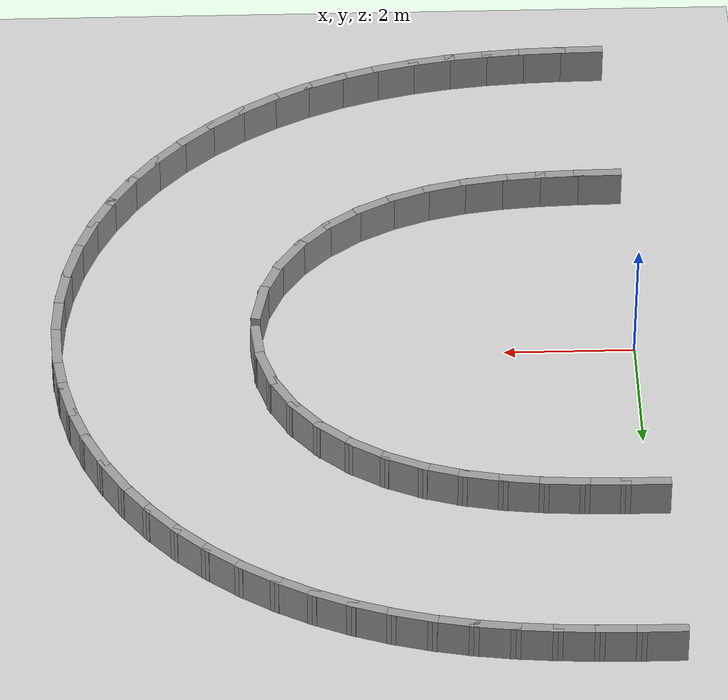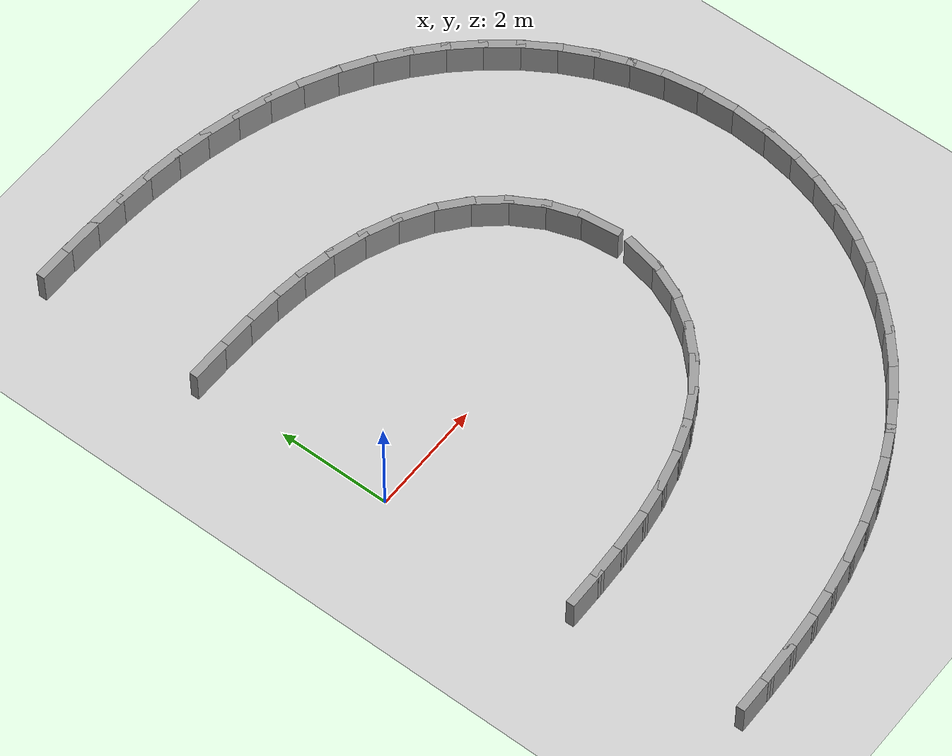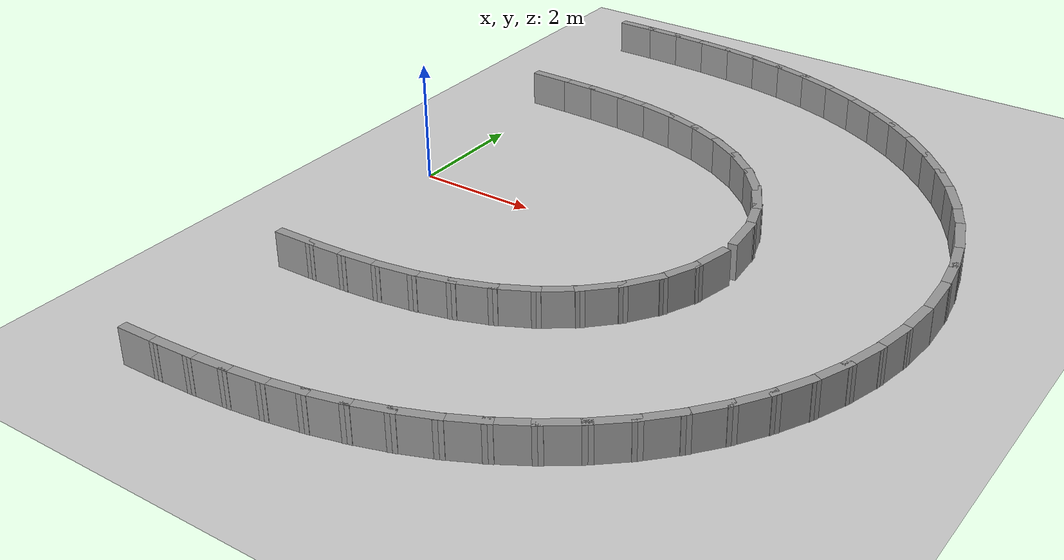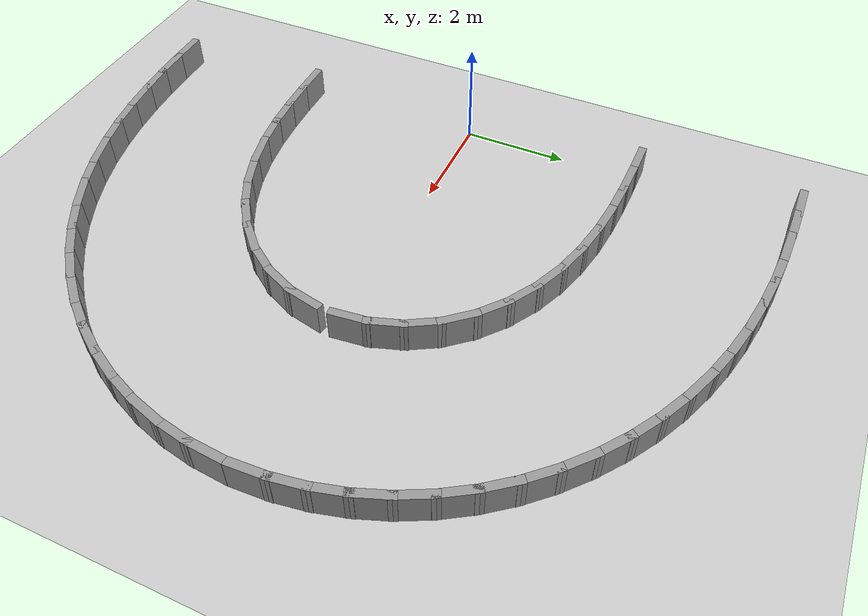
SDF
<sdf version="1.7">
 <world name="default">
  <model name="ground_plane">
   <static>1</static>
   <link name="link">
    <collision name="collision">
     <geometry><plane><normal>0 0 1</normal><size>100 100</size></plane></geometry>
     <surface><friction><ode><mu>100</mu><mu2>50</mu2></ode></friction></surface>
    </collision>
    <visual name="visual">
     <cast_shadows>0</cast_shadows>
     <geometry><plane><normal>0 0 1</normal><size>100 100</size></plane></geometry>
     <material>
      <script><uri>file://media/materials/scripts/gazebo.material</uri><name>Gazebo/Grey</name></script>
     </material>
    </visual>
   </link>
  </model>
  <model name="rand_lobed_07">
   <link name="Wall_0">
    <collision name="Wall_0_Collision">
     <geometry><box><size>0.7489 0.1500 0.6000</size></box></geometry>
     <pose>0 0 0.3000 0 -0 0</pose>
    </collision>
    <visual name="Wall_0_Visual">
     <pose>0 0 0.3000 0 -0 0</pose>
     <geometry><box><size>0.7489 0.1500 0.6000</size></box></geometry>
     <material>
      <script><uri>file://media/materials/scripts/gazebo.material</uri><name>Gazebo/Grey</name></script>
      <ambient>1 1 1 1</ambient>
     </material>
    </visual>
    <pose>5.7555 0.2977 0 0 -0 1.67740</pose>
   </link>
   <link name="Wall_1">
    <collision name="Wall_1_Collision">
     <geometry><box><size>0.7489 0.1500 0.6000</size></box></geometry>
     <pose>0 0 0.3000 0 -0 0</pose>
    </collision>
    <visual name="Wall_1_Visual">
     <pose>0 0 0.3000 0 -0 0</pose>
     <geometry><box><size>0.7489 0.1500 0.6000</size></box></geometry>
     <material>
      <script><uri>file://media/materials/scripts/gazebo.material</uri><name>Gazebo/Grey</name></script>
      <ambient>1 1 1 1</ambient>
     </material>
    </visual>
    <pose>5.6305 0.8801 0 0 -0 1.88706</pose>
   </link>
   <link name="Wall_2">
    <collision name="Wall_2_Collision">
     <geometry><box><size>0.7491 0.1500 0.6000</size></box></geometry>
     <pose>0 0 0.3000 0 -0 0</pose>
    </collision>
    <visual name="Wall_2_Visual">
     <pose>0 0 0.3000 0 -0 0</pose>
     <geometry><box><size>0.7491 0.1500 0.6000</size></box></geometry>
     <material>
      <script><uri>file://media/materials/scripts/gazebo.material</uri><name>Gazebo/Grey</name></script>
      <ambient>1 1 1 1</ambient>
     </material>
    </visual>
    <pose>5.3895 1.4252 0 0 -0 2.08697</pose>
   </link>
   <link name="Wall_3">
    <collision name="Wall_3_Collision">
     <geometry><box><size>0.7492 0.1500 0.6000</size></box></geometry>
     <pose>0 0 0.3000 0 -0 0</pose>
    </collision>
    <visual name="Wall_3_Visual">
     <pose>0 0 0.3000 0 -0 0</pose>
     <geometry><box><size>0.7492 0.1500 0.6000</size></box></geometry>
     <material>
      <script><uri>file://media/materials/scripts/gazebo.material</uri><name>Gazebo/Grey</name></script>
      <ambient>1 1 1 1</ambient>
     </material>
    </visual>
    <pose>5.0481 1.9144 0 0 -0 2.27315</pose>
   </link>
   <link name="Wall_4">
    <collision name="Wall_4_Collision">
     <geometry><box><size>0.7493 0.1500 0.6000</size></box></geometry>
     <pose>0 0 0.3000 0 -0 0</pose>
    </collision>
    <visual name="Wall_4_Visual">
     <pose>0 0 0.3000 0 -0 0</pose>
     <geometry><box><size>0.7493 0.1500 0.6000</size></box></geometry>
     <material>
      <script><uri>file://media/materials/scripts/gazebo.material</uri><name>Gazebo/Grey</name></script>
      <ambient>1 1 1 1</ambient>
     </material>
    </visual>
    <pose>4.6250 2.3357 0 0 -0 2.44361</pose>
   </link>
   <link name="Wall_5">
    <collision name="Wall_5_Collision">
     <geometry><box><size>0.7495 0.1500 0.6000</size></box></geometry>
     <pose>0 0 0.3000 0 -0 0</pose>
    </collision>
    <visual name="Wall_5_Visual">
     <pose>0 0 0.3000 0 -0 0</pose>
     <geometry><box><size>0.7495 0.1500 0.6000</size></box></geometry>
     <material>
      <script><uri>file://media/materials/scripts/gazebo.material</uri><name>Gazebo/Grey</name></script>
      <ambient>1 1 1 1</ambient>
     </material>
    </visual>
    <pose>4.1389 2.6835 0 0 -0 2.59742</pose>
   </link>
   <link name="Wall_6">
    <collision name="Wall_6_Collision">
     <geometry><box><size>0.7496 0.1500 0.6000</size></box></geometry>
     <pose>0 0 0.3000 0 -0 0</pose>
    </collision>
    <visual name="Wall_6_Visual">
     <pose>0 0 0.3000 0 -0 0</pose>
     <geometry><box><size>0.7496 0.1500 0.6000</size></box></geometry>
     <material>
      <script><uri>file://media/materials/scripts/gazebo.material</uri><name>Gazebo/Grey</name></script>
      <ambient>1 1 1 1</ambient>
     </material>
    </visual>
    <pose>3.6073 2.9575 0 0 -0 2.73401</pose>
   </link>
   <link name="Wall_7">
    <collision name="Wall_7_Collision">
     <geometry><box><size>0.7497 0.1500 0.6000</size></box></geometry>
     <pose>0 0 0.3000 0 -0 0</pose>
    </collision>
    <visual name="Wall_7_Visual">
     <pose>0 0 0.3000 0 -0 0</pose>
     <geometry><box><size>0.7497 0.1500 0.6000</size></box></geometry>
     <material>
      <script><uri>file://media/materials/scripts/gazebo.material</uri><name>Gazebo/Grey</name></script>
      <ambient>1 1 1 1</ambient>
     </material>
    </visual>
    <pose>3.0446 3.1619 0 0 -0 2.85229</pose>
   </link>
   <link name="Wall_8">
    <collision name="Wall_8_Collision">
     <geometry><box><size>0.7498 0.1500 0.6000</size></box></geometry>
     <pose>0 0 0.3000 0 -0 0</pose>
    </collision>
    <visual name="Wall_8_Visual">
     <pose>0 0 0.3000 0 -0 0</pose>
     <geometry><box><size>0.7498 0.1500 0.6000</size></box></geometry>
     <material>
      <script><uri>file://media/materials/scripts/gazebo.material</uri><name>Gazebo/Grey</name></script>
      <ambient>1 1 1 1</ambient>
     </material>
    </visual>
    <pose>2.4628 3.3044 0 0 -0 2.95045</pose>
   </link>
   <link name="Wall_9">
    <collision name="Wall_9_Collision">
     <geometry><box><size>0.7499 0.1500 0.6000</size></box></geometry>
     <pose>0 0 0.3000 0 -0 0</pose>
    </collision>
    <visual name="Wall_9_Visual">
     <pose>0 0 0.3000 0 -0 0</pose>
     <geometry><box><size>0.7499 0.1500 0.6000</size></box></geometry>
     <material>
      <script><uri>file://media/materials/scripts/gazebo.material</uri><name>Gazebo/Grey</name></script>
      <ambient>1 1 1 1</ambient>
     </material>
    </visual>
    <pose>1.8704 3.3957 0 0 -0 3.02677</pose>
   </link>
   <link name="Wall_10">
    <collision name="Wall_10_Collision">
     <geometry><box><size>0.7500 0.1500 0.6000</size></box></geometry>
     <pose>0 0 0.3000 0 -0 0</pose>
    </collision>
    <visual name="Wall_10_Visual">
     <pose>0 0 0.3000 0 -0 0</pose>
     <geometry><box><size>0.7500 0.1500 0.6000</size></box></geometry>
     <material>
      <script><uri>file://media/materials/scripts/gazebo.material</uri><name>Gazebo/Grey</name></script>
      <ambient>1 1 1 1</ambient>
     </material>
    </visual>
    <pose>1.2730 3.4483 0 0 -0 3.08092</pose>
   </link>
   <link name="Wall_11">
    <collision name="Wall_11_Collision">
     <geometry><box><size>0.7500 0.1500 0.6000</size></box></geometry>
     <pose>0 0 0.3000 0 -0 0</pose>
    </collision>
    <visual name="Wall_11_Visual">
     <pose>0 0 0.3000 0 -0 0</pose>
     <geometry><box><size>0.7500 0.1500 0.6000</size></box></geometry>
     <material>
      <script><uri>file://media/materials/scripts/gazebo.material</uri><name>Gazebo/Grey</name></script>
      <ambient>1 1 1 1</ambient>
     </material>
    </visual>
    <pose>0.6737 3.4742 0 0 -0 3.11592</pose>
   </link>
   <link name="Wall_12">
    <collision name="Wall_12_Collision">
     <geometry><box><size>0.7500 0.1500 0.6000</size></box></geometry>
     <pose>0 0 0.3000 0 -0 0</pose>
    </collision>
    <visual name="Wall_12_Visual">
     <pose>0 0 0.3000 0 -0 0</pose>
     <geometry><box><size>0.7500 0.1500 0.6000</size></box></geometry>
     <material>
      <script><uri>file://media/materials/scripts/gazebo.material</uri><name>Gazebo/Grey</name></script>
      <ambient>1 1 1 1</ambient>
     </material>
    </visual>
    <pose>0.0738 3.4826 0 0 -0 3.13907</pose>
   </link>
   <link name="Wall_38">
    <collision name="Wall_38_Collision">
     <geometry><box><size>0.7500 0.1500 0.6000</size></box></geometry>
     <pose>0 0 0.3000 0 -0 0</pose>
    </collision>
    <visual name="Wall_38_Visual">
     <pose>0 0 0.3000 0 -0 0</pose>
     <geometry><box><size>0.7500 0.1500 0.6000</size></box></geometry>
     <material>
      <script><uri>file://media/materials/scripts/gazebo.material</uri><name>Gazebo/Grey</name></script>
      <ambient>1 1 1 1</ambient>
     </material>
    </visual>
    <pose>0.3786 -3.4801 0 0 -0 0.01340</pose>
   </link>
   <link name="Wall_39">
    <collision name="Wall_39_Collision">
     <geometry><box><size>0.7500 0.1500 0.6000</size></box></geometry>
     <pose>0 0 0.3000 0 -0 0</pose>
    </collision>
    <visual name="Wall_39_Visual">
     <pose>0 0 0.3000 0 -0 0</pose>
     <geometry><box><size>0.7500 0.1500 0.6000</size></box></geometry>
     <material>
      <script><uri>file://media/materials/scripts/gazebo.material</uri><name>Gazebo/Grey</name></script>
      <ambient>1 1 1 1</ambient>
     </material>
    </visual>
    <pose>0.9783 -3.4637 0 0 -0 0.04142</pose>
   </link>
   <link name="Wall_40">
    <collision name="Wall_40_Collision">
     <geometry><box><size>0.7499 0.1500 0.6000</size></box></geometry>
     <pose>0 0 0.3000 0 -0 0</pose>
    </collision>
    <visual name="Wall_40_Visual">
     <pose>0 0 0.3000 0 -0 0</pose>
     <geometry><box><size>0.7499 0.1500 0.6000</size></box></geometry>
     <material>
      <script><uri>file://media/materials/scripts/gazebo.material</uri><name>Gazebo/Grey</name></script>
      <ambient>1 1 1 1</ambient>
     </material>
    </visual>
    <pose>1.5769 -3.4256 0 0 -0 0.08551</pose>
   </link>
   <link name="Wall_41">
    <collision name="Wall_41_Collision">
     <geometry><box><size>0.7499 0.1500 0.6000</size></box></geometry>
     <pose>0 0 0.3000 0 -0 0</pose>
    </collision>
    <visual name="Wall_41_Visual">
     <pose>0 0 0.3000 0 -0 0</pose>
     <geometry><box><size>0.7499 0.1500 0.6000</size></box></geometry>
     <material>
      <script><uri>file://media/materials/scripts/gazebo.material</uri><name>Gazebo/Grey</name></script>
      <ambient>1 1 1 1</ambient>
     </material>
    </visual>
    <pose>2.1723 -3.3549 0 0 -0 0.15079</pose>
   </link>
   <link name="Wall_42">
    <collision name="Wall_42_Collision">
     <geometry><box><size>0.7498 0.1500 0.6000</size></box></geometry>
     <pose>0 0 0.3000 0 -0 0</pose>
    </collision>
    <visual name="Wall_42_Visual">
     <pose>0 0 0.3000 0 -0 0</pose>
     <geometry><box><size>0.7498 0.1500 0.6000</size></box></geometry>
     <material>
      <script><uri>file://media/materials/scripts/gazebo.material</uri><name>Gazebo/Grey</name></script>
      <ambient>1 1 1 1</ambient>
     </material>
    </visual>
    <pose>2.7602 -3.2391 0 0 -0 0.23840</pose>
   </link>
   <link name="Wall_43">
    <collision name="Wall_43_Collision">
     <geometry><box><size>0.7496 0.1500 0.6000</size></box></geometry>
     <pose>0 0 0.3000 0 -0 0</pose>
    </collision>
    <visual name="Wall_43_Visual">
     <pose>0 0 0.3000 0 -0 0</pose>
     <geometry><box><size>0.7496 0.1500 0.6000</size></box></geometry>
     <material>
      <script><uri>file://media/materials/scripts/gazebo.material</uri><name>Gazebo/Grey</name></script>
      <ambient>1 1 1 1</ambient>
     </material>
    </visual>
    <pose>3.3336 -3.0663 0 0 -0 0.34700</pose>
   </link>
   <link name="Wall_44">
    <collision name="Wall_44_Collision">
     <geometry><box><size>0.7495 0.1500 0.6000</size></box></geometry>
     <pose>0 0 0.3000 0 -0 0</pose>
    </collision>
    <visual name="Wall_44_Visual">
     <pose>0 0 0.3000 0 -0 0</pose>
     <geometry><box><size>0.7495 0.1500 0.6000</size></box></geometry>
     <material>
      <script><uri>file://media/materials/scripts/gazebo.material</uri><name>Gazebo/Grey</name></script>
      <ambient>1 1 1 1</ambient>
     </material>
    </visual>
    <pose>3.8821 -2.8273 0 0 -0 0.47477</pose>
   </link>
   <link name="Wall_45">
    <collision name="Wall_45_Collision">
     <geometry><box><size>0.7494 0.1500 0.6000</size></box></geometry>
     <pose>0 0 0.3000 0 -0 0</pose>
    </collision>
    <visual name="Wall_45_Visual">
     <pose>0 0 0.3000 0 -0 0</pose>
     <geometry><box><size>0.7494 0.1500 0.6000</size></box></geometry>
     <material>
      <script><uri>file://media/materials/scripts/gazebo.material</uri><name>Gazebo/Grey</name></script>
      <ambient>1 1 1 1</ambient>
     </material>
    </visual>
    <pose>4.3926 -2.5161 0 0 -0 0.62024</pose>
   </link>
   <link name="Wall_46">
    <collision name="Wall_46_Collision">
     <geometry><box><size>0.7493 0.1500 0.6000</size></box></geometry>
     <pose>0 0 0.3000 0 -0 0</pose>
    </collision>
    <visual name="Wall_46_Visual">
     <pose>0 0 0.3000 0 -0 0</pose>
     <geometry><box><size>0.7493 0.1500 0.6000</size></box></geometry>
     <material>
      <script><uri>file://media/materials/scripts/gazebo.material</uri><name>Gazebo/Grey</name></script>
      <ambient>1 1 1 1</ambient>
     </material>
    </visual>
    <pose>4.8490 -2.1306 0 0 -0 0.78256</pose>
   </link>
   <link name="Wall_47">
    <collision name="Wall_47_Collision">
     <geometry><box><size>0.7491 0.1500 0.6000</size></box></geometry>
     <pose>0 0 0.3000 0 -0 0</pose>
    </collision>
    <visual name="Wall_47_Visual">
     <pose>0 0 0.3000 0 -0 0</pose>
     <geometry><box><size>0.7491 0.1500 0.6000</size></box></geometry>
     <material>
      <script><uri>file://media/materials/scripts/gazebo.material</uri><name>Gazebo/Grey</name></script>
      <ambient>1 1 1 1</ambient>
     </material>
    </visual>
    <pose>5.2330 -1.6737 0 0 -0 0.96116</pose>
   </link>
   <link name="Wall_48">
    <collision name="Wall_48_Collision">
     <geometry><box><size>0.7490 0.1500 0.6000</size></box></geometry>
     <pose>0 0 0.3000 0 -0 0</pose>
    </collision>
    <visual name="Wall_48_Visual">
     <pose>0 0 0.3000 0 -0 0</pose>
     <geometry><box><size>0.7490 0.1500 0.6000</size></box></geometry>
     <material>
      <script><uri>file://media/materials/scripts/gazebo.material</uri><name>Gazebo/Grey</name></script>
      <ambient>1 1 1 1</ambient>
     </material>
    </visual>
    <pose>5.5256 -1.1542 0 0 -0 1.15469</pose>
   </link>
   <link name="Wall_49">
    <collision name="Wall_49_Collision">
     <geometry><box><size>0.7489 0.1500 0.6000</size></box></geometry>
     <pose>0 0 0.3000 0 -0 0</pose>
    </collision>
    <visual name="Wall_49_Visual">
     <pose>0 0 0.3000 0 -0 0</pose>
     <geometry><box><size>0.7489 0.1500 0.6000</size></box></geometry>
     <material>
      <script><uri>file://media/materials/scripts/gazebo.material</uri><name>Gazebo/Grey</name></script>
      <ambient>1 1 1 1</ambient>
     </material>
    </visual>
    <pose>5.7092 -0.5874 0 0 -0 1.36021</pose>
   </link>
   <link name="Wall_50">
    <collision name="Wall_50_Collision">
     <geometry><box><size>0.7497 0.1500 0.6000</size></box></geometry>
     <pose>0 0 0.3000 0 -0 0</pose>
    </collision>
    <visual name="Wall_50_Visual">
     <pose>0 0 0.3000 0 -0 0</pose>
     <geometry><box><size>0.7497 0.1500 0.6000</size></box></geometry>
     <material>
      <script><uri>file://media/materials/scripts/gazebo.material</uri><name>Gazebo/Grey</name></script>
      <ambient>1 1 1 1</ambient>
     </material>
    </visual>
    <pose>8.8040 0.2995 0 0 -0 1.62217</pose>
   </link>
   <link name="Wall_51">
    <collision name="Wall_51_Collision">
     <geometry><box><size>0.7497 0.1500 0.6000</size></box></geometry>
     <pose>0 0 0.3000 0 -0 0</pose>
    </collision>
    <visual name="Wall_51_Visual">
     <pose>0 0 0.3000 0 -0 0</pose>
     <geometry><box><size>0.7497 0.1500 0.6000</size></box></geometry>
     <material>
      <script><uri>file://media/materials/scripts/gazebo.material</uri><name>Gazebo/Grey</name></script>
      <ambient>1 1 1 1</ambient>
     </material>
    </visual>
    <pose>8.7426 0.8953 0 0 -0 1.72470</pose>
   </link>
   <link name="Wall_52">
    <collision name="Wall_52_Collision">
     <geometry><box><size>0.7497 0.1500 0.6000</size></box></geometry>
     <pose>0 0 0.3000 0 -0 0</pose>
    </collision>
    <visual name="Wall_52_Visual">
     <pose>0 0 0.3000 0 -0 0</pose>
     <geometry><box><size>0.7497 0.1500 0.6000</size></box></geometry>
     <material>
      <script><uri>file://media/materials/scripts/gazebo.material</uri><name>Gazebo/Grey</name></script>
      <ambient>1 1 1 1</ambient>
     </material>
    </visual>
    <pose>8.6207 1.4817 0 0 -0 1.82667</pose>
   </link>
   <link name="Wall_53">
    <collision name="Wall_53_Collision">
     <geometry><box><size>0.7497 0.1500 0.6000</size></box></geometry>
     <pose>0 0 0.3000 0 -0 0</pose>
    </collision>
    <visual name="Wall_53_Visual">
     <pose>0 0 0.3000 0 -0 0</pose>
     <geometry><box><size>0.7497 0.1500 0.6000</size></box></geometry>
     <material>
      <script><uri>file://media/materials/scripts/gazebo.material</uri><name>Gazebo/Grey</name></script>
      <ambient>1 1 1 1</ambient>
     </material>
    </visual>
    <pose>8.4401 2.0528 0 0 -0 1.92767</pose>
   </link>
   <link name="Wall_54">
    <collision name="Wall_54_Collision">
     <geometry><box><size>0.7498 0.1500 0.6000</size></box></geometry>
     <pose>0 0 0.3000 0 -0 0</pose>
    </collision>
    <visual name="Wall_54_Visual">
     <pose>0 0 0.3000 0 -0 0</pose>
     <geometry><box><size>0.7498 0.1500 0.6000</size></box></geometry>
     <material>
      <script><uri>file://media/materials/scripts/gazebo.material</uri><name>Gazebo/Grey</name></script>
      <ambient>1 1 1 1</ambient>
     </material>
    </visual>
    <pose>8.2031 2.6029 0 0 -0 2.02734</pose>
   </link>
   <link name="Wall_55">
    <collision name="Wall_55_Collision">
     <geometry><box><size>0.7498 0.1500 0.6000</size></box></geometry>
     <pose>0 0 0.3000 0 -0 0</pose>
    </collision>
    <visual name="Wall_55_Visual">
     <pose>0 0 0.3000 0 -0 0</pose>
     <geometry><box><size>0.7498 0.1500 0.6000</size></box></geometry>
     <material>
      <script><uri>file://media/materials/scripts/gazebo.material</uri><name>Gazebo/Grey</name></script>
      <ambient>1 1 1 1</ambient>
     </material>
    </visual>
    <pose>7.9130 3.1270 0 0 -0 2.12536</pose>
   </link>
   <link name="Wall_56">
    <collision name="Wall_56_Collision">
     <geometry><box><size>0.7498 0.1500 0.6000</size></box></geometry>
     <pose>0 0 0.3000 0 -0 0</pose>
    </collision>
    <visual name="Wall_56_Visual">
     <pose>0 0 0.3000 0 -0 0</pose>
     <geometry><box><size>0.7498 0.1500 0.6000</size></box></geometry>
     <material>
      <script><uri>file://media/materials/scripts/gazebo.material</uri><name>Gazebo/Grey</name></script>
      <ambient>1 1 1 1</ambient>
     </material>
    </visual>
    <pose>7.5734 3.6206 0 0 -0 2.22152</pose>
   </link>
   <link name="Wall_57">
    <collision name="Wall_57_Collision">
     <geometry><box><size>0.7498 0.1500 0.6000</size></box></geometry>
     <pose>0 0 0.3000 0 -0 0</pose>
    </collision>
    <visual name="Wall_57_Visual">
     <pose>0 0 0.3000 0 -0 0</pose>
     <geometry><box><size>0.7498 0.1500 0.6000</size></box></geometry>
     <material>
      <script><uri>file://media/materials/scripts/gazebo.material</uri><name>Gazebo/Grey</name></script>
      <ambient>1 1 1 1</ambient>
     </material>
    </visual>
    <pose>7.1885 4.0797 0 0 -0 2.31543</pose>
   </link>
   <link name="Wall_58">
    <collision name="Wall_58_Collision">
     <geometry><box><size>0.7498 0.1500 0.6000</size></box></geometry>
     <pose>0 0 0.3000 0 -0 0</pose>
    </collision>
    <visual name="Wall_58_Visual">
     <pose>0 0 0.3000 0 -0 0</pose>
     <geometry><box><size>0.7498 0.1500 0.6000</size></box></geometry>
     <material>
      <script><uri>file://media/materials/scripts/gazebo.material</uri><name>Gazebo/Grey</name></script>
      <ambient>1 1 1 1</ambient>
     </material>
    </visual>
    <pose>6.7627 4.5012 0 0 -0 2.40702</pose>
   </link>
   <link name="Wall_59">
    <collision name="Wall_59_Collision">
     <geometry><box><size>0.7498 0.1500 0.6000</size></box></geometry>
     <pose>0 0 0.3000 0 -0 0</pose>
    </collision>
    <visual name="Wall_59_Visual">
     <pose>0 0 0.3000 0 -0 0</pose>
     <geometry><box><size>0.7498 0.1500 0.6000</size></box></geometry>
     <material>
      <script><uri>file://media/materials/scripts/gazebo.material</uri><name>Gazebo/Grey</name></script>
      <ambient>1 1 1 1</ambient>
     </material>
    </visual>
    <pose>6.3006 4.8827 0 0 -0 2.49595</pose>
   </link>
   <link name="Wall_60">
    <collision name="Wall_60_Collision">
     <geometry><box><size>0.7498 0.1500 0.6000</size></box></geometry>
     <pose>0 0 0.3000 0 -0 0</pose>
    </collision>
    <visual name="Wall_60_Visual">
     <pose>0 0 0.3000 0 -0 0</pose>
     <geometry><box><size>0.7498 0.1500 0.6000</size></box></geometry>
     <material>
      <script><uri>file://media/materials/scripts/gazebo.material</uri><name>Gazebo/Grey</name></script>
      <ambient>1 1 1 1</ambient>
     </material>
    </visual>
    <pose>5.8070 5.2224 0 0 -0 2.58186</pose>
   </link>
   <link name="Wall_61">
    <collision name="Wall_61_Collision">
     <geometry><box><size>0.7498 0.1500 0.6000</size></box></geometry>
     <pose>0 0 0.3000 0 -0 0</pose>
    </collision>
    <visual name="Wall_61_Visual">
     <pose>0 0 0.3000 0 -0 0</pose>
     <geometry><box><size>0.7498 0.1500 0.6000</size></box></geometry>
     <material>
      <script><uri>file://media/materials/scripts/gazebo.material</uri><name>Gazebo/Grey</name></script>
      <ambient>1 1 1 1</ambient>
     </material>
    </visual>
    <pose>5.2864 5.5193 0 0 -0 2.66463</pose>
   </link>
   <link name="Wall_62">
    <collision name="Wall_62_Collision">
     <geometry><box><size>0.7499 0.1500 0.6000</size></box></geometry>
     <pose>0 0 0.3000 0 -0 0</pose>
    </collision>
    <visual name="Wall_62_Visual">
     <pose>0 0 0.3000 0 -0 0</pose>
     <geometry><box><size>0.7499 0.1500 0.6000</size></box></geometry>
     <material>
      <script><uri>file://media/materials/scripts/gazebo.material</uri><name>Gazebo/Grey</name></script>
      <ambient>1 1 1 1</ambient>
     </material>
    </visual>
    <pose>4.7434 5.7732 0 0 -0 2.74376</pose>
   </link>
   <link name="Wall_63">
    <collision name="Wall_63_Collision">
     <geometry><box><size>0.7499 0.1500 0.6000</size></box></geometry>
     <pose>0 0 0.3000 0 -0 0</pose>
    </collision>
    <visual name="Wall_63_Visual">
     <pose>0 0 0.3000 0 -0 0</pose>
     <geometry><box><size>0.7499 0.1500 0.6000</size></box></geometry>
     <material>
      <script><uri>file://media/materials/scripts/gazebo.material</uri><name>Gazebo/Grey</name></script>
      <ambient>1 1 1 1</ambient>
     </material>
    </visual>
    <pose>4.1825 5.9846 0 0 -0 2.81862</pose>
   </link>
   <link name="Wall_64">
    <collision name="Wall_64_Collision">
     <geometry><box><size>0.7499 0.1500 0.6000</size></box></geometry>
     <pose>0 0 0.3000 0 -0 0</pose>
    </collision>
    <visual name="Wall_64_Visual">
     <pose>0 0 0.3000 0 -0 0</pose>
     <geometry><box><size>0.7499 0.1500 0.6000</size></box></geometry>
     <material>
      <script><uri>file://media/materials/scripts/gazebo.material</uri><name>Gazebo/Grey</name></script>
      <ambient>1 1 1 1</ambient>
     </material>
    </visual>
    <pose>3.6077 6.1549 0 0 -0 2.88858</pose>
   </link>
   <link name="Wall_65">
    <collision name="Wall_65_Collision">
     <geometry><box><size>0.7499 0.1500 0.6000</size></box></geometry>
     <pose>0 0 0.3000 0 -0 0</pose>
    </collision>
    <visual name="Wall_65_Visual">
     <pose>0 0 0.3000 0 -0 0</pose>
     <geometry><box><size>0.7499 0.1500 0.6000</size></box></geometry>
     <material>
      <script><uri>file://media/materials/scripts/gazebo.material</uri><name>Gazebo/Grey</name></script>
      <ambient>1 1 1 1</ambient>
     </material>
    </visual>
    <pose>3.0227 6.2864 0 0 -0 2.95249</pose>
   </link>
   <link name="Wall_66">
    <collision name="Wall_66_Collision">
     <geometry><box><size>0.7499 0.1500 0.6000</size></box></geometry>
     <pose>0 0 0.3000 0 -0 0</pose>
    </collision>
    <visual name="Wall_66_Visual">
     <pose>0 0 0.3000 0 -0 0</pose>
     <geometry><box><size>0.7499 0.1500 0.6000</size></box></geometry>
     <material>
      <script><uri>file://media/materials/scripts/gazebo.material</uri><name>Gazebo/Grey</name></script>
      <ambient>1 1 1 1</ambient>
     </material>
    </visual>
    <pose>2.4307 6.3824 0 0 -0 3.00898</pose>
   </link>
   <link name="Wall_67">
    <collision name="Wall_67_Collision">
     <geometry><box><size>0.7500 0.1500 0.6000</size></box></geometry>
     <pose>0 0 0.3000 0 -0 0</pose>
    </collision>
    <visual name="Wall_67_Visual">
     <pose>0 0 0.3000 0 -0 0</pose>
     <geometry><box><size>0.7500 0.1500 0.6000</size></box></geometry>
     <material>
      <script><uri>file://media/materials/scripts/gazebo.material</uri><name>Gazebo/Grey</name></script>
      <ambient>1 1 1 1</ambient>
     </material>
    </visual>
    <pose>1.8345 6.4476 0 0 -0 3.05645</pose>
   </link>
   <link name="Wall_68">
    <collision name="Wall_68_Collision">
     <geometry><box><size>0.7500 0.1500 0.6000</size></box></geometry>
     <pose>0 0 0.3000 0 -0 0</pose>
    </collision>
    <visual name="Wall_68_Visual">
     <pose>0 0 0.3000 0 -0 0</pose>
     <geometry><box><size>0.7500 0.1500 0.6000</size></box></geometry>
     <material>
      <script><uri>file://media/materials/scripts/gazebo.material</uri><name>Gazebo/Grey</name></script>
      <ambient>1 1 1 1</ambient>
     </material>
    </visual>
    <pose>1.2360 6.4875 0 0 -0 3.09359</pose>
   </link>
   <link name="Wall_69">
    <collision name="Wall_69_Collision">
     <geometry><box><size>0.7500 0.1500 0.6000</size></box></geometry>
     <pose>0 0 0.3000 0 -0 0</pose>
    </collision>
    <visual name="Wall_69_Visual">
     <pose>0 0 0.3000 0 -0 0</pose>
     <geometry><box><size>0.7500 0.1500 0.6000</size></box></geometry>
     <material>
      <script><uri>file://media/materials/scripts/gazebo.material</uri><name>Gazebo/Grey</name></script>
      <ambient>1 1 1 1</ambient>
     </material>
    </visual>
    <pose>0.6364 6.5082 0 0 -0 3.12050</pose>
   </link>
   <link name="Wall_70">
    <collision name="Wall_70_Collision">
     <geometry><box><size>0.7500 0.1500 0.6000</size></box></geometry>
     <pose>0 0 0.3000 0 -0 0</pose>
    </collision>
    <visual name="Wall_70_Visual">
     <pose>0 0 0.3000 0 -0 0</pose>
     <geometry><box><size>0.7500 0.1500 0.6000</size></box></geometry>
     <material>
      <script><uri>file://media/materials/scripts/gazebo.material</uri><name>Gazebo/Grey</name></script>
      <ambient>1 1 1 1</ambient>
     </material>
    </visual>
    <pose>0.0365 6.5149 0 0 -0 3.14047</pose>
   </link>
   <link name="Wall_112">
    <collision name="Wall_112_Collision">
     <geometry><box><size>0.7500 0.1500 0.6000</size></box></geometry>
     <pose>0 0 0.3000 0 -0 0</pose>
    </collision>
    <visual name="Wall_112_Visual">
     <pose>0 0 0.3000 0 -0 0</pose>
     <geometry><box><size>0.7500 0.1500 0.6000</size></box></geometry>
     <material>
      <script><uri>file://media/materials/scripts/gazebo.material</uri><name>Gazebo/Grey</name></script>
      <ambient>1 1 1 1</ambient>
     </material>
    </visual>
    <pose>0.4905 -6.5110 0 0 -0 0.01581</pose>
   </link>
   <link name="Wall_113">
    <collision name="Wall_113_Collision">
     <geometry><box><size>0.7500 0.1500 0.6000</size></box></geometry>
     <pose>0 0 0.3000 0 -0 0</pose>
    </collision>
    <visual name="Wall_113_Visual">
     <pose>0 0 0.3000 0 -0 0</pose>
     <geometry><box><size>0.7500 0.1500 0.6000</size></box></geometry>
     <material>
      <script><uri>file://media/materials/scripts/gazebo.material</uri><name>Gazebo/Grey</name></script>
      <ambient>1 1 1 1</ambient>
     </material>
    </visual>
    <pose>1.0902 -6.4941 0 0 -0 0.04059</pose>
   </link>
   <link name="Wall_114">
    <collision name="Wall_114_Collision">
     <geometry><box><size>0.7500 0.1500 0.6000</size></box></geometry>
     <pose>0 0 0.3000 0 -0 0</pose>
    </collision>
    <visual name="Wall_114_Visual">
     <pose>0 0 0.3000 0 -0 0</pose>
     <geometry><box><size>0.7500 0.1500 0.6000</size></box></geometry>
     <material>
      <script><uri>file://media/materials/scripts/gazebo.material</uri><name>Gazebo/Grey</name></script>
      <ambient>1 1 1 1</ambient>
     </material>
    </visual>
    <pose>1.6891 -6.4594 0 0 -0 0.07512</pose>
   </link>
   <link name="Wall_115">
    <collision name="Wall_115_Collision">
     <geometry><box><size>0.7499 0.1500 0.6000</size></box></geometry>
     <pose>0 0 0.3000 0 -0 0</pose>
    </collision>
    <visual name="Wall_115_Visual">
     <pose>0 0 0.3000 0 -0 0</pose>
     <geometry><box><size>0.7499 0.1500 0.6000</size></box></geometry>
     <material>
      <script><uri>file://media/materials/scripts/gazebo.material</uri><name>Gazebo/Grey</name></script>
      <ambient>1 1 1 1</ambient>
     </material>
    </visual>
    <pose>2.2860 -6.4009 0 0 -0 0.12016</pose>
   </link>
   <link name="Wall_116">
    <collision name="Wall_116_Collision">
     <geometry><box><size>0.7499 0.1500 0.6000</size></box></geometry>
     <pose>0 0 0.3000 0 -0 0</pose>
    </collision>
    <visual name="Wall_116_Visual">
     <pose>0 0 0.3000 0 -0 0</pose>
     <geometry><box><size>0.7499 0.1500 0.6000</size></box></geometry>
     <material>
      <script><uri>file://media/materials/scripts/gazebo.material</uri><name>Gazebo/Grey</name></script>
      <ambient>1 1 1 1</ambient>
     </material>
    </visual>
    <pose>2.8792 -6.3128 0 0 -0 0.17464</pose>
   </link>
   <link name="Wall_117">
    <collision name="Wall_117_Collision">
     <geometry><box><size>0.7499 0.1500 0.6000</size></box></geometry>
     <pose>0 0 0.3000 0 -0 0</pose>
    </collision>
    <visual name="Wall_117_Visual">
     <pose>0 0 0.3000 0 -0 0</pose>
     <geometry><box><size>0.7499 0.1500 0.6000</size></box></geometry>
     <material>
      <script><uri>file://media/materials/scripts/gazebo.material</uri><name>Gazebo/Grey</name></script>
      <ambient>1 1 1 1</ambient>
     </material>
    </visual>
    <pose>3.4662 -6.1903 0 0 -0 0.23687</pose>
   </link>
   <link name="Wall_118">
    <collision name="Wall_118_Collision">
     <geometry><box><size>0.7499 0.1500 0.6000</size></box></geometry>
     <pose>0 0 0.3000 0 -0 0</pose>
    </collision>
    <visual name="Wall_118_Visual">
     <pose>0 0 0.3000 0 -0 0</pose>
     <geometry><box><size>0.7499 0.1500 0.6000</size></box></geometry>
     <material>
      <script><uri>file://media/materials/scripts/gazebo.material</uri><name>Gazebo/Grey</name></script>
      <ambient>1 1 1 1</ambient>
     </material>
    </visual>
    <pose>4.0438 -6.0297 0 0 -0 0.30544</pose>
   </link>
   <link name="Wall_119">
    <collision name="Wall_119_Collision">
     <geometry><box><size>0.7499 0.1500 0.6000</size></box></geometry>
     <pose>0 0 0.3000 0 -0 0</pose>
    </collision>
    <visual name="Wall_119_Visual">
     <pose>0 0 0.3000 0 -0 0</pose>
     <geometry><box><size>0.7499 0.1500 0.6000</size></box></geometry>
     <material>
      <script><uri>file://media/materials/scripts/gazebo.material</uri><name>Gazebo/Grey</name></script>
      <ambient>1 1 1 1</ambient>
     </material>
    </visual>
    <pose>4.6085 -5.8285 0 0 -0 0.37921</pose>
   </link>
   <link name="Wall_120">
    <collision name="Wall_120_Collision">
     <geometry><box><size>0.7498 0.1500 0.6000</size></box></geometry>
     <pose>0 0 0.3000 0 -0 0</pose>
    </collision>
    <visual name="Wall_120_Visual">
     <pose>0 0 0.3000 0 -0 0</pose>
     <geometry><box><size>0.7498 0.1500 0.6000</size></box></geometry>
     <material>
      <script><uri>file://media/materials/scripts/gazebo.material</uri><name>Gazebo/Grey</name></script>
      <ambient>1 1 1 1</ambient>
     </material>
    </visual>
    <pose>5.1562 -5.5850 0 0 -0 0.45738</pose>
   </link>
   <link name="Wall_121">
    <collision name="Wall_121_Collision">
     <geometry><box><size>0.7498 0.1500 0.6000</size></box></geometry>
     <pose>0 0 0.3000 0 -0 0</pose>
    </collision>
    <visual name="Wall_121_Visual">
     <pose>0 0 0.3000 0 -0 0</pose>
     <geometry><box><size>0.7498 0.1500 0.6000</size></box></geometry>
     <material>
      <script><uri>file://media/materials/scripts/gazebo.material</uri><name>Gazebo/Grey</name></script>
      <ambient>1 1 1 1</ambient>
     </material>
    </visual>
    <pose>5.6826 -5.2986 0 0 -0 0.53925</pose>
   </link>
   <link name="Wall_122">
    <collision name="Wall_122_Collision">
     <geometry><box><size>0.7498 0.1500 0.6000</size></box></geometry>
     <pose>0 0 0.3000 0 -0 0</pose>
    </collision>
    <visual name="Wall_122_Visual">
     <pose>0 0 0.3000 0 -0 0</pose>
     <geometry><box><size>0.7498 0.1500 0.6000</size></box></geometry>
     <material>
      <script><uri>file://media/materials/scripts/gazebo.material</uri><name>Gazebo/Grey</name></script>
      <ambient>1 1 1 1</ambient>
     </material>
    </visual>
    <pose>6.1833 -4.9692 0 0 -0 0.62452</pose>
   </link>
   <link name="Wall_123">
    <collision name="Wall_123_Collision">
     <geometry><box><size>0.7498 0.1500 0.6000</size></box></geometry>
     <pose>0 0 0.3000 0 -0 0</pose>
    </collision>
    <visual name="Wall_123_Visual">
     <pose>0 0 0.3000 0 -0 0</pose>
     <geometry><box><size>0.7498 0.1500 0.6000</size></box></geometry>
     <material>
      <script><uri>file://media/materials/scripts/gazebo.material</uri><name>Gazebo/Grey</name></script>
      <ambient>1 1 1 1</ambient>
     </material>
    </visual>
    <pose>6.6535 -4.5978 0 0 -0 0.71270</pose>
   </link>
   <link name="Wall_124">
    <collision name="Wall_124_Collision">
     <geometry><box><size>0.7498 0.1500 0.6000</size></box></geometry>
     <pose>0 0 0.3000 0 -0 0</pose>
    </collision>
    <visual name="Wall_124_Visual">
     <pose>0 0 0.3000 0 -0 0</pose>
     <geometry><box><size>0.7498 0.1500 0.6000</size></box></geometry>
     <material>
      <script><uri>file://media/materials/scripts/gazebo.material</uri><name>Gazebo/Grey</name></script>
      <ambient>1 1 1 1</ambient>
     </material>
    </visual>
    <pose>7.0885 -4.1858 0 0 -0 0.80360</pose>
   </link>
   <link name="Wall_125">
    <collision name="Wall_125_Collision">
     <geometry><box><size>0.7498 0.1500 0.6000</size></box></geometry>
     <pose>0 0 0.3000 0 -0 0</pose>
    </collision>
    <visual name="Wall_125_Visual">
     <pose>0 0 0.3000 0 -0 0</pose>
     <geometry><box><size>0.7498 0.1500 0.6000</size></box></geometry>
     <material>
      <script><uri>file://media/materials/scripts/gazebo.material</uri><name>Gazebo/Grey</name></script>
      <ambient>1 1 1 1</ambient>
     </material>
    </visual>
    <pose>7.4838 -3.7356 0 0 -0 0.89704</pose>
   </link>
   <link name="Wall_126">
    <collision name="Wall_126_Collision">
     <geometry><box><size>0.7498 0.1500 0.6000</size></box></geometry>
     <pose>0 0 0.3000 0 -0 0</pose>
    </collision>
    <visual name="Wall_126_Visual">
     <pose>0 0 0.3000 0 -0 0</pose>
     <geometry><box><size>0.7498 0.1500 0.6000</size></box></geometry>
     <material>
      <script><uri>file://media/materials/scripts/gazebo.material</uri><name>Gazebo/Grey</name></script>
      <ambient>1 1 1 1</ambient>
     </material>
    </visual>
    <pose>7.8348 -3.2501 0 0 -0 0.99262</pose>
   </link>
   <link name="Wall_127">
    <collision name="Wall_127_Collision">
     <geometry><box><size>0.7498 0.1500 0.6000</size></box></geometry>
     <pose>0 0 0.3000 0 -0 0</pose>
    </collision>
    <visual name="Wall_127_Visual">
     <pose>0 0 0.3000 0 -0 0</pose>
     <geometry><box><size>0.7498 0.1500 0.6000</size></box></geometry>
     <material>
      <script><uri>file://media/materials/scripts/gazebo.material</uri><name>Gazebo/Grey</name></script>
      <ambient>1 1 1 1</ambient>
     </material>
    </visual>
    <pose>8.1373 -2.7330 0 0 -0 1.09029</pose>
   </link>
   <link name="Wall_128">
    <collision name="Wall_128_Collision">
     <geometry><box><size>0.7497 0.1500 0.6000</size></box></geometry>
     <pose>0 0 0.3000 0 -0 0</pose>
    </collision>
    <visual name="Wall_128_Visual">
     <pose>0 0 0.3000 0 -0 0</pose>
     <geometry><box><size>0.7497 0.1500 0.6000</size></box></geometry>
     <material>
      <script><uri>file://media/materials/scripts/gazebo.material</uri><name>Gazebo/Grey</name></script>
      <ambient>1 1 1 1</ambient>
     </material>
    </visual>
    <pose>8.3875 -2.1887 0 0 -0 1.18958</pose>
   </link>
   <link name="Wall_129">
    <collision name="Wall_129_Collision">
     <geometry><box><size>0.7497 0.1500 0.6000</size></box></geometry>
     <pose>0 0 0.3000 0 -0 0</pose>
    </collision>
    <visual name="Wall_129_Visual">
     <pose>0 0 0.3000 0 -0 0</pose>
     <geometry><box><size>0.7497 0.1500 0.6000</size></box></geometry>
     <material>
      <script><uri>file://media/materials/scripts/gazebo.material</uri><name>Gazebo/Grey</name></script>
      <ambient>1 1 1 1</ambient>
     </material>
    </visual>
    <pose>8.5821 -1.6222 0 0 -0 1.29027</pose>
   </link>
   <link name="Wall_130">
    <collision name="Wall_130_Collision">
     <geometry><box><size>0.7497 0.1500 0.6000</size></box></geometry>
     <pose>0 0 0.3000 0 -0 0</pose>
    </collision>
    <visual name="Wall_130_Visual">
     <pose>0 0 0.3000 0 -0 0</pose>
     <geometry><box><size>0.7497 0.1500 0.6000</size></box></geometry>
     <material>
      <script><uri>file://media/materials/scripts/gazebo.material</uri><name>Gazebo/Grey</name></script>
      <ambient>1 1 1 1</ambient>
     </material>
    </visual>
    <pose>8.7184 -1.0390 0 0 -0 1.39202</pose>
   </link>
   <link name="Wall_131">
    <collision name="Wall_131_Collision">
     <geometry><box><size>0.7497 0.1500 0.6000</size></box></geometry>
     <pose>0 0 0.3000 0 -0 0</pose>
    </collision>
    <visual name="Wall_131_Visual">
     <pose>0 0 0.3000 0 -0 0</pose>
     <geometry><box><size>0.7497 0.1500 0.6000</size></box></geometry>
     <material>
      <script><uri>file://media/materials/scripts/gazebo.material</uri><name>Gazebo/Grey</name></script>
      <ambient>1 1 1 1</ambient>
     </material>
    </visual>
    <pose>8.7946 -0.4449 0 0 -0 1.49445</pose>
   </link>
   <static>1</static>
  </model>
 </world>
</sdf>
